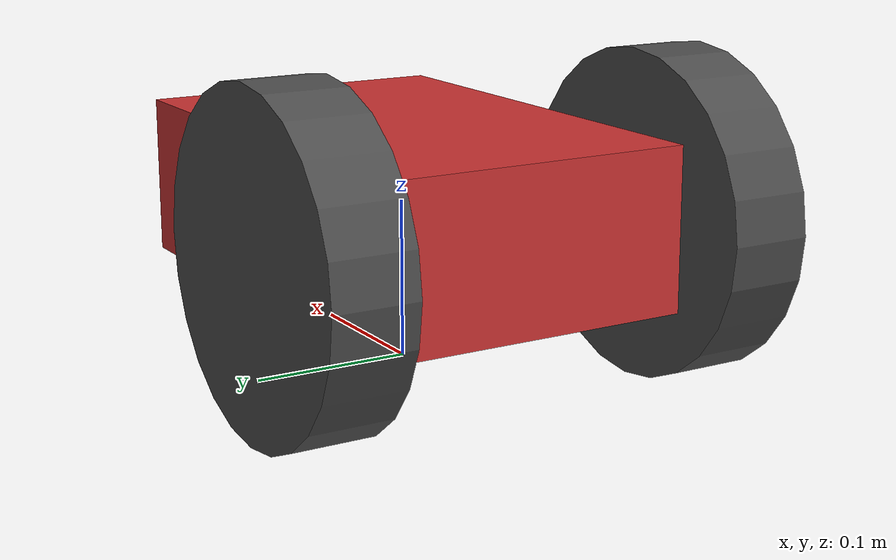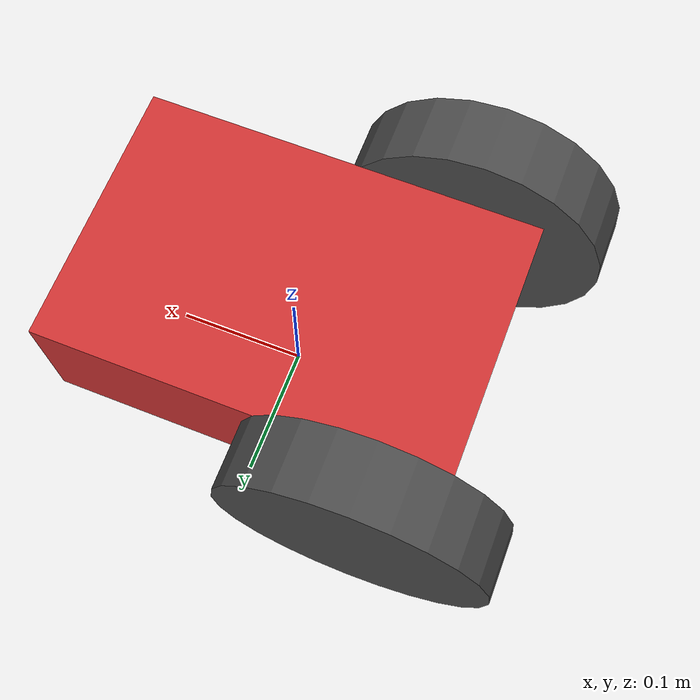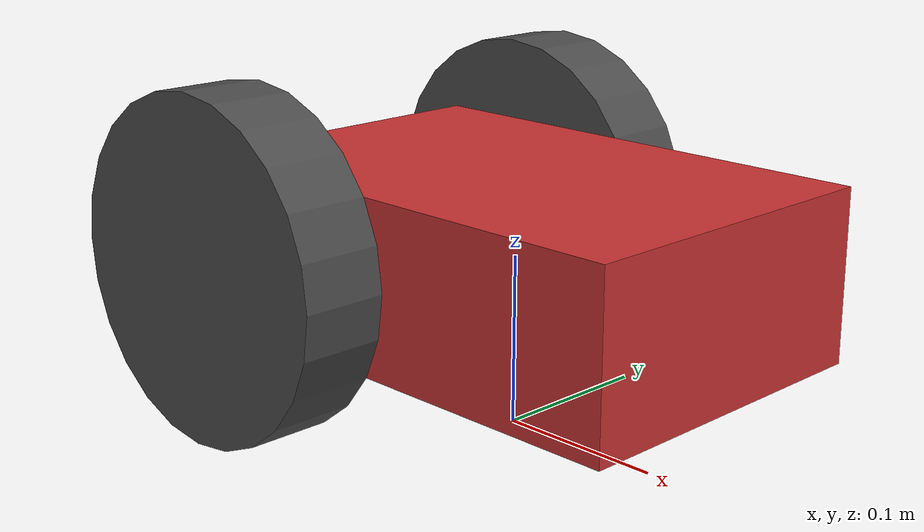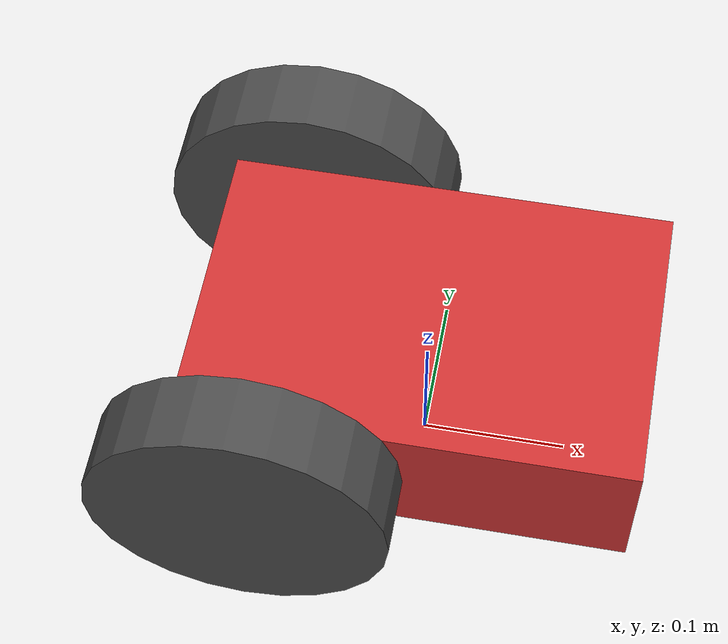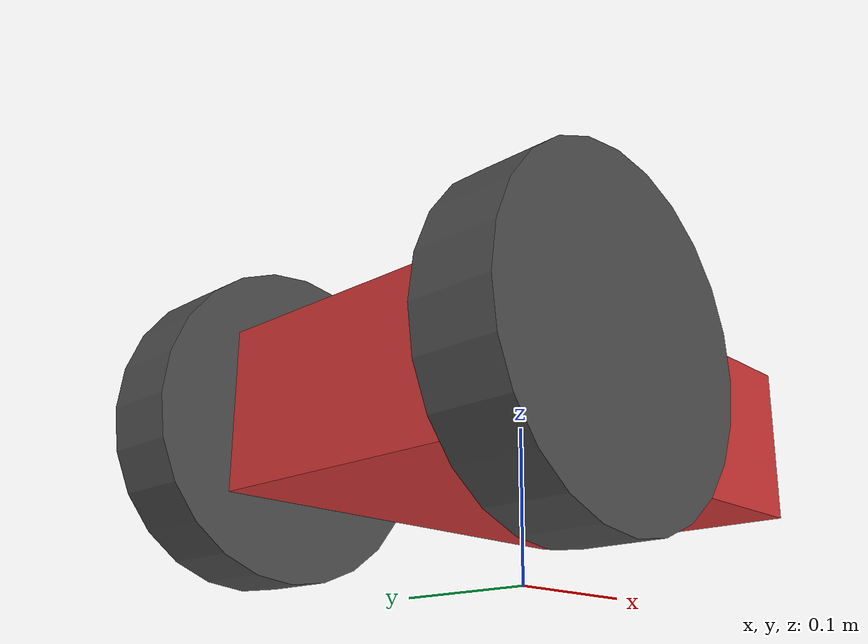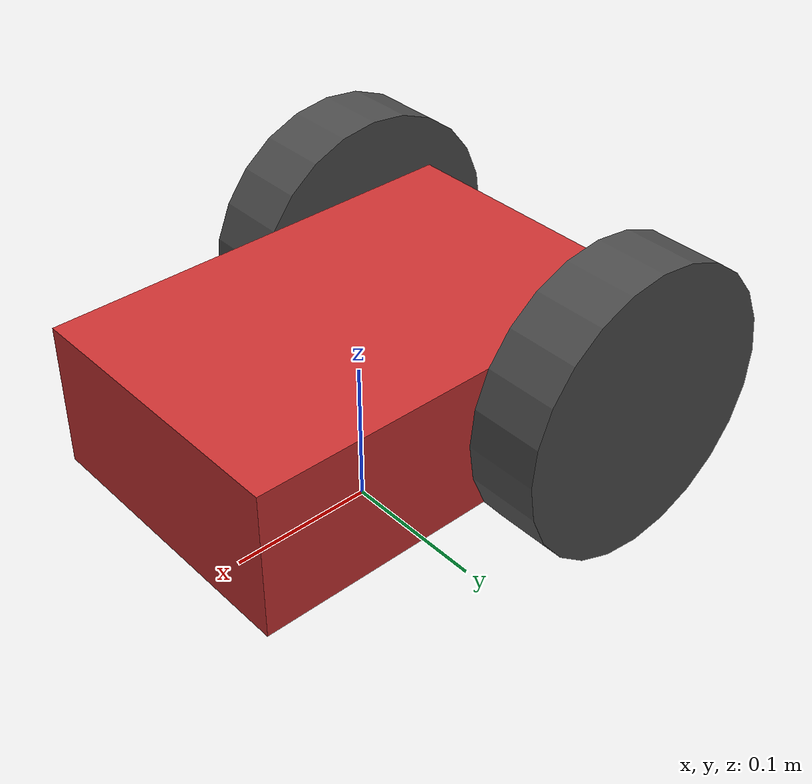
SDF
<?xml version='1.0'?>
<sdf version='1.9'>
  <model name='simple_vehicle'>
    <pose>0 0 0.1 0 0 0</pose>
    <link name='base_link'>
      <pose>0 0 0 0 0 0</pose>
      <inertial>
        <mass>5.0</mass> <!--kg-->
        <inertia>
          <ixx>0.104167</ixx>
          <ixy>0</ixy>
          <ixz>0</ixz>
          <iyy>0.104167</iyy>
          <iyz>0</iyz>
          <izz>0.104167</izz>
        </inertia>
      </inertial>
      <collision name='base_collision'>
        <geometry>
          <box>
            <size>0.3 0.2 0.1</size> <!--长宽高单位米-->
          </box>
        </geometry>
        <surface>
          <friction>
            <ode>
              <mu>0.5</mu>
              <mu2>0.5</mu2>
            </ode>
          </friction>
        </surface>
      </collision>
      <visual name='base_visual'>
        <geometry>
          <box>
            <size>0.3 0.2 0.1</size> <!--长宽高单位米-->
          </box>
        </geometry>
        <material>
          <ambient>0.8 0.2 0.2 1</ambient>
          <diffuse>0.8 0.2 0.2 1</diffuse>
        </material>
      </visual>
    </link>

    <link name='left_wheel'>
      <pose>-0.1 0.125 0 1.5708 0 0</pose>
      <inertial>
        <mass>1.0</mass>
        <inertia>
          <ixx>0.05</ixx>
          <ixy>0</ixy>
          <ixz>0</ixz>
          <iyy>0.05</iyy>
          <iyz>0</iyz>
          <izz>0.1</izz>
        </inertia>
      </inertial>
      <collision name='left_wheel_collision'>
        <geometry>
          <cylinder>
            <radius>0.1</radius>
            <length>0.05</length>
          </cylinder>
        </geometry>
      </collision>
      <visual name='left_wheel_visual'>
        <geometry>
          <cylinder>
            <radius>0.1</radius>
            <length>0.05</length>
          </cylinder>
        </geometry>
        <material>
          <ambient>0.3 0.3 0.3 1</ambient>
          <diffuse>0.3 0.3 0.3 1</diffuse>
        </material>
      </visual>
    </link>

    <joint name='left_wheel_joint' type='revolute'>
      <pose>-0.1 0 0 0 0 0</pose>
      <parent>base_link</parent>
      <child>left_wheel</child>
      <axis>
        <xyz>0 1 0</xyz> <!--Y轴为旋转轴-->
        <limit>
          <lower>-1e9</lower>
          <upper>1e9</upper>
        </limit>
      </axis>
    </joint>

    <link name='right_wheel'>
      <pose>-0.1 -0.125 0 1.5708 0 0</pose>
      <inertial>
        <mass>1.0</mass>
        <inertia>
          <ixx>0.05</ixx>
          <ixy>0</ixy>
          <ixz>0</ixz>
          <iyy>0.05</iyy>
          <iyz>0</iyz>
          <izz>0.1</izz>
        </inertia>
      </inertial>
      <collision name='right_wheel_collision'>
        <geometry>
          <cylinder>
            <radius>0.1</radius>
            <length>0.05</length>
          </cylinder>
        </geometry>
      </collision>
      <visual name='right_wheel_visual'>
        <geometry>
          <cylinder>
            <radius>0.1</radius>
            <length>0.05</length>
          </cylinder>
        </geometry>
        <material>
          <ambient>0.3 0.3 0.3 1</ambient>
          <diffuse>0.3 0.3 0.3 1</diffuse>
        </material>
      </visual>
    </link>

    <joint name='right_wheel_joint' type='revolute'>
      <pose>-0.1 0 0 0 0 0</pose>
      <parent>base_link</parent>
      <child>right_wheel</child>
      <axis>
        <xyz>0 1 0</xyz> <!--Y轴为旋转轴-->
        <limit>
          <lower>-1e9</lower>
          <upper>1e9</upper>
        </limit>
      </axis>
    </joint>

  </model>
</sdf>
